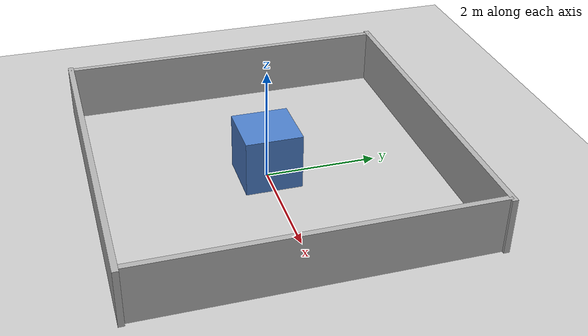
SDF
<sdf version="1.8">
 <world name="world_demo">
  <physics name="1ms" type="ignored">
   <max_step_size>0.01</max_step_size>
   <real_time_factor>1.0</real_time_factor>
  </physics>
  <plugin filename="libignition-gazebo-physics-system.so" name="ignition::gazebo::systems::Physics"/>
  <plugin filename="ignition-gazebo-sensors-system" name="ignition::gazebo::systems::Sensors">
   <render_engine>ogre2</render_engine>
  </plugin>
  <plugin filename="libignition-gazebo-scene-broadcaster-system.so" name="ignition::gazebo::systems::SceneBroadcaster"/>
  <plugin filename="libignition-gazebo-user-commands-system.so" name="ignition::gazebo::systems::UserCommands"/>
  <plugin filename="libignition-gazebo-contact-system.so" name="ignition::gazebo::systems::Contact"/>
  <plugin filename="ignition-gazebo-imu-system" name="ignition::gazebo::systems::Imu"/>
  <scene>
   <ambient>1 1 1 1</ambient>
   <background>0.3 0.7 0.9 1</background>
   <shadows>0</shadows>
   <grid>1</grid>
  </scene>
  <light type="directional" name="sun">
   <pose>0 0 10 0 0 0</pose>
   <diffuse>0.8 0.8 0.8 1</diffuse>
   <specular>0.2 0.2 0.2 1</specular>
   <attenuation>
    <range>1000</range>
    <constant>0.9</constant>
    <linear>0.01</linear>
    <quadratic>0.001</quadratic>
   </attenuation>
   <direction>-0.5 0.1 -0.9</direction>
  </light>
  <model name="ground_plane">
   <static>true</static>
   <link name="link">
    <collision name="collision">
     <geometry><plane><normal>0 0 1</normal><size>100 100</size></plane></geometry>
    </collision>
    <visual name="visual">
     <geometry><plane><normal>0 0 1</normal><size>100 100</size></plane></geometry>
     <material><ambient>0.8 0.8 0.8 1</ambient><diffuse>0.8 0.8 0.8 1</diffuse></material>
    </visual>
   </link>
  </model>
  <model name="wall_north">
   <static>true</static>
   <pose>0 3 0.5 0 0 0</pose>
   <link name="link">
    <collision name="c"><geometry><box><size>6.2 0.1 1.0</size></box></geometry></collision>
    <visual name="v">
     <geometry><box><size>6.2 0.1 1.0</size></box></geometry>
     <material><ambient>0.5 0.5 0.5 1</ambient><diffuse>0.7 0.7 0.7 1</diffuse></material>
    </visual>
   </link>
  </model>
  <model name="wall_south">
   <static>true</static>
   <pose>0 -3 0.5 0 0 0</pose>
   <link name="link">
    <collision name="c"><geometry><box><size>6.2 0.1 1.0</size></box></geometry></collision>
    <visual name="v">
     <geometry><box><size>6.2 0.1 1.0</size></box></geometry>
     <material><ambient>0.5 0.5 0.5 1</ambient><diffuse>0.7 0.7 0.7 1</diffuse></material>
    </visual>
   </link>
  </model>
  <model name="wall_east">
   <static>true</static>
   <pose>3 0 0.5 0 0 0</pose>
   <link name="link">
    <collision name="c"><geometry><box><size>0.1 6.0 1.0</size></box></geometry></collision>
    <visual name="v">
     <geometry><box><size>0.1 6.0 1.0</size></box></geometry>
     <material><ambient>0.5 0.5 0.5 1</ambient><diffuse>0.7 0.7 0.7 1</diffuse></material>
    </visual>
   </link>
  </model>
  <model name="wall_west">
   <static>true</static>
   <pose>-3 0 0.5 0 0 0</pose>
   <link name="link">
    <collision name="c"><geometry><box><size>0.1 6.0 1.0</size></box></geometry></collision>
    <visual name="v">
     <geometry><box><size>0.1 6.0 1.0</size></box></geometry>
     <material><ambient>0.5 0.5 0.5 1</ambient><diffuse>0.7 0.7 0.7 1</diffuse></material>
    </visual>
   </link>
  </model>
  <model name="center_box">
   <static>true</static>
   <pose>0 0 0.5 0 0 0</pose>
   <link name="link">
    <collision name="c"><geometry><box><size>1.0 1.0 1.0</size></box></geometry></collision>
    <visual name="v">
     <geometry><box><size>1.0 1.0 1.0</size></box></geometry>
     <material><ambient>0.2 0.4 0.7 1</ambient><diffuse>0.3 0.5 0.8 1</diffuse></material>
    </visual>
   </link>
  </model>
 </world>
</sdf>
